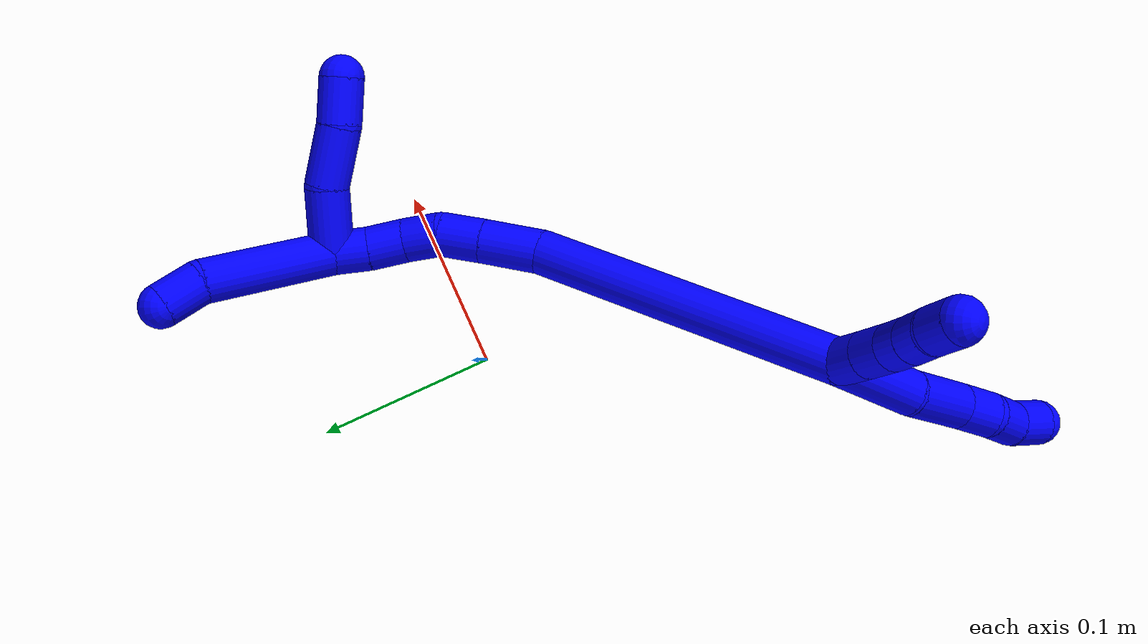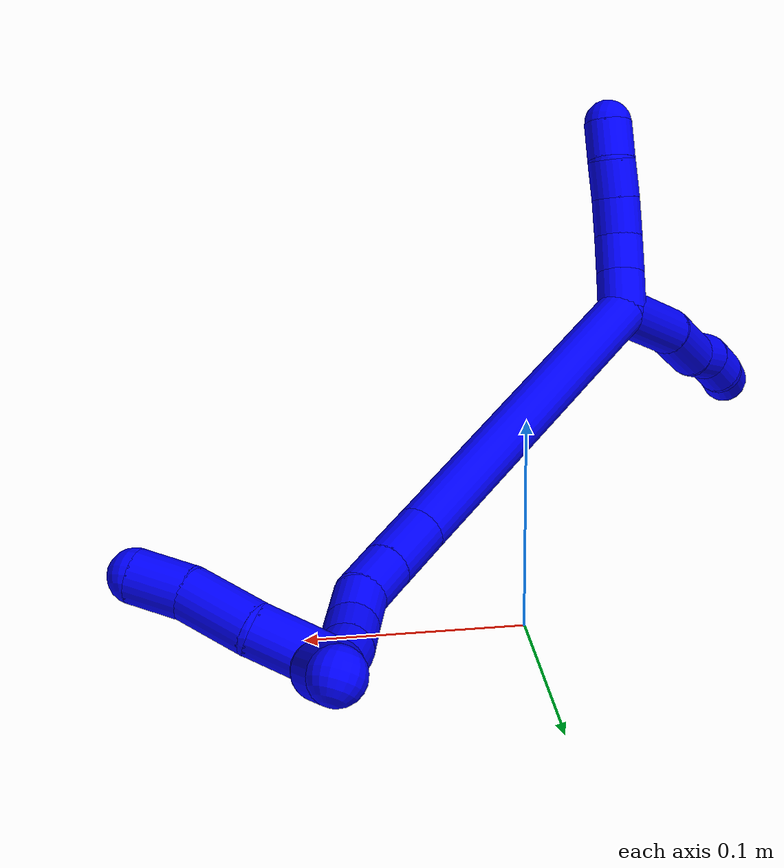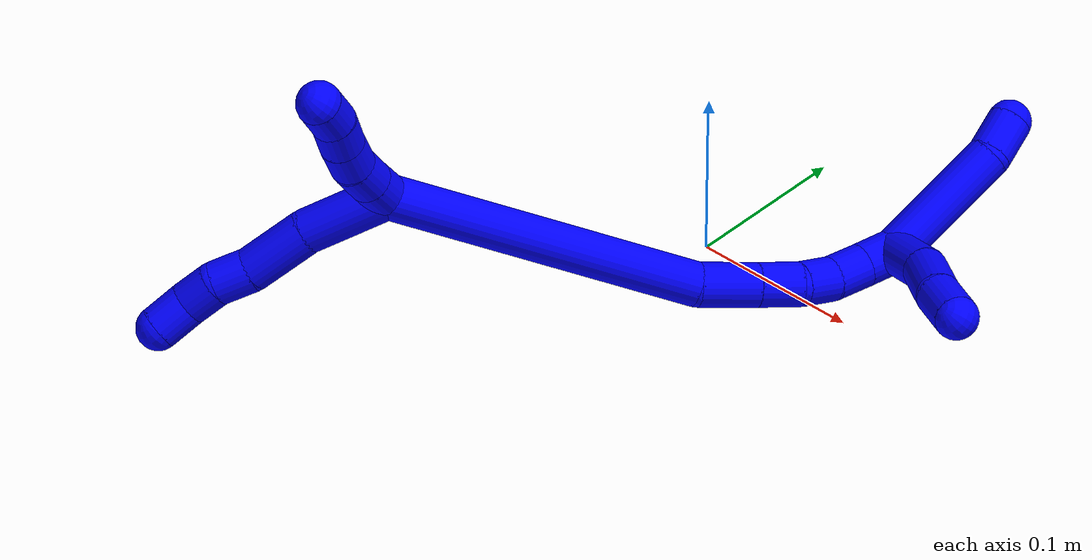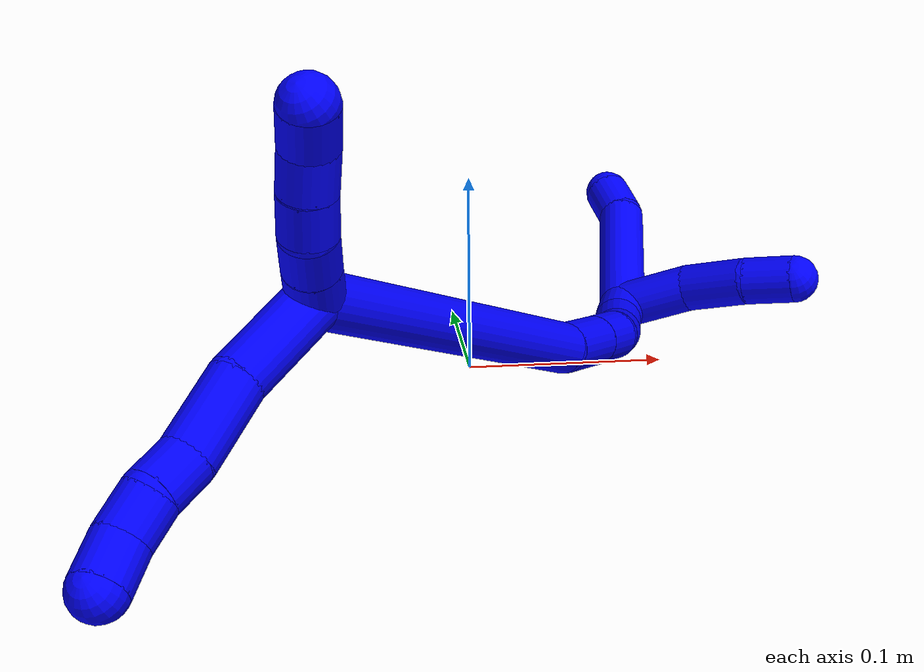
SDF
<sdf version="1.7">
 <world name="default">
  <model name="1">
   <static>0</static>
   <link name="1">
    <collision name="collision-cylinder-e_1_2_8">
     <pose>-0.020816 -0.01195 0.006282 1.08681 -0.995417 -0.634262</pose>
     <geometry><cylinder><radius>0.0125</radius><length>0.049622</length></cylinder></geometry>
     <surface>
      <friction><ode><mu>1.16</mu><mu2>1.16</mu2><slip1>0</slip1><slip2>0</slip2></ode></friction>
      <contact><ode><kp>1e+06</kp><kd>1</kd><max_vel>0</max_vel><min_depth>0.001</min_depth></ode></contact>
     </surface>
    </collision>
    <visual name="visual-cylinder-e_1_2_8">
     <pose>-0.020816 -0.01195 0.006282 1.08681 -0.995417 -0.634262</pose>
     <geometry><cylinder><radius>0.0125</radius><length>0.049622</length></cylinder></geometry>
     <material><ambient>0 0 1 1</ambient></material>
    </visual>
    <collision name="collision-cylinder-e_2_8_9">
     <pose>-0.056564 -0.03551 0.014994 1.36452 -0.899516 -0.747517</pose>
     <geometry><cylinder><radius>0.0125</radius><length>0.038139</length></cylinder></geometry>
     <surface>
      <friction><ode><mu>1.16</mu><mu2>1.16</mu2><slip1>0</slip1><slip2>0</slip2></ode></friction>
      <contact><ode><kp>1e+06</kp><kd>1</kd><max_vel>0</max_vel><min_depth>0.001</min_depth></ode></contact>
     </surface>
    </collision>
    <visual name="visual-cylinder-e_2_8_9">
     <pose>-0.056564 -0.03551 0.014994 1.36452 -0.899516 -0.747517</pose>
     <geometry><cylinder><radius>0.0125</radius><length>0.038139</length></cylinder></geometry>
     <material><ambient>0 0 1 1</ambient></material>
    </visual>
    <collision name="collision-cylinder-e_3_9_10">
     <pose>-0.079555 -0.052562 0.021198 0.964293 -0.882879 -0.484872</pose>
     <geometry><cylinder><radius>0.0125</radius><length>0.020864</length></cylinder></geometry>
     <surface>
      <friction><ode><mu>1.16</mu><mu2>1.16</mu2><slip1>0</slip1><slip2>0</slip2></ode></friction>
      <contact><ode><kp>1e+06</kp><kd>1</kd><max_vel>0</max_vel><min_depth>0.001</min_depth></ode></contact>
     </surface>
    </collision>
    <visual name="visual-cylinder-e_3_9_10">
     <pose>-0.079555 -0.052562 0.021198 0.964293 -0.882879 -0.484872</pose>
     <geometry><cylinder><radius>0.0125</radius><length>0.020864</length></cylinder></geometry>
     <material><ambient>0 0 1 1</ambient></material>
    </visual>
    <collision name="collision-cylinder-e_4_10_11">
     <pose>-0.095908 -0.063667 0.025447 1.48746 -0.970087 -0.902912</pose>
     <geometry><cylinder><radius>0.0125</radius><length>0.020106</length></cylinder></geometry>
     <surface>
      <friction><ode><mu>1.16</mu><mu2>1.16</mu2><slip1>0</slip1><slip2>0</slip2></ode></friction>
      <contact><ode><kp>1e+06</kp><kd>1</kd><max_vel>0</max_vel><min_depth>0.001</min_depth></ode></contact>
     </surface>
    </collision>
    <visual name="visual-cylinder-e_4_10_11">
     <pose>-0.095908 -0.063667 0.025447 1.48746 -0.970087 -0.902912</pose>
     <geometry><cylinder><radius>0.0125</radius><length>0.020106</length></cylinder></geometry>
     <material><ambient>0 0 1 1</ambient></material>
    </visual>
    <collision name="collision-cylinder-e_5_11_6">
     <pose>-0.110945 -0.077295 0.027959 1.32022 -0.686901 -0.541593</pose>
     <geometry><cylinder><radius>0.0125</radius><length>0.021269</length></cylinder></geometry>
     <surface>
      <friction><ode><mu>1.16</mu><mu2>1.16</mu2><slip1>0</slip1><slip2>0</slip2></ode></friction>
      <contact><ode><kp>1e+06</kp><kd>1</kd><max_vel>0</max_vel><min_depth>0.001</min_depth></ode></contact>
     </surface>
    </collision>
    <visual name="visual-cylinder-e_5_11_6">
     <pose>-0.110945 -0.077295 0.027959 1.32022 -0.686901 -0.541593</pose>
     <geometry><cylinder><radius>0.0125</radius><length>0.021269</length></cylinder></geometry>
     <material><ambient>0 0 1 1</ambient></material>
    </visual>
    <collision name="collision-cylinder-e_1_2_12">
     <pose>0.002844 -0.000401 0.009579 0.041793 0.288351 0.006068</pose>
     <geometry><cylinder><radius>0.0125</radius><length>0.02</length></cylinder></geometry>
     <surface>
      <friction><ode><mu>1.16</mu><mu2>1.16</mu2><slip1>0</slip1><slip2>0</slip2></ode></friction>
      <contact><ode><kp>1e+06</kp><kd>1</kd><max_vel>0</max_vel><min_depth>0.001</min_depth></ode></contact>
     </surface>
    </collision>
    <visual name="visual-cylinder-e_1_2_12">
     <pose>0.002844 -0.000401 0.009579 0.041793 0.288351 0.006068</pose>
     <geometry><cylinder><radius>0.0125</radius><length>0.02</length></cylinder></geometry>
     <material><ambient>0 0 1 1</ambient></material>
    </visual>
    <collision name="collision-cylinder-e_2_12_13">
     <pose>0.008778 -0.00099 0.028666 0.019894 0.31421 0.003152</pose>
     <geometry><cylinder><radius>0.0125</radius><length>0.02</length></cylinder></geometry>
     <surface>
      <friction><ode><mu>1.16</mu><mu2>1.16</mu2><slip1>0</slip1><slip2>0</slip2></ode></friction>
      <contact><ode><kp>1e+06</kp><kd>1</kd><max_vel>0</max_vel><min_depth>0.001</min_depth></ode></contact>
     </surface>
    </collision>
    <visual name="visual-cylinder-e_2_12_13">
     <pose>0.008778 -0.00099 0.028666 0.019894 0.31421 0.003152</pose>
     <geometry><cylinder><radius>0.0125</radius><length>0.02</length></cylinder></geometry>
     <material><ambient>0 0 1 1</ambient></material>
    </visual>
    <collision name="collision-cylinder-e_3_13_14">
     <pose>0.016094 0.000337 0.04711 -0.168144 0.436279 -0.037356</pose>
     <geometry><cylinder><radius>0.0125</radius><length>0.02</length></cylinder></geometry>
     <surface>
      <friction><ode><mu>1.16</mu><mu2>1.16</mu2><slip1>0</slip1><slip2>0</slip2></ode></friction>
      <contact><ode><kp>1e+06</kp><kd>1</kd><max_vel>0</max_vel><min_depth>0.001</min_depth></ode></contact>
     </surface>
    </collision>
    <visual name="visual-cylinder-e_3_13_14">
     <pose>0.016094 0.000337 0.04711 -0.168144 0.436279 -0.037356</pose>
     <geometry><cylinder><radius>0.0125</radius><length>0.02</length></cylinder></geometry>
     <material><ambient>0 0 1 1</ambient></material>
    </visual>
    <collision name="collision-cylinder-e_4_14_15">
     <pose>0.025091 0.003599 0.064659 -0.199843 0.49736 -0.050906</pose>
     <geometry><cylinder><radius>0.0125</radius><length>0.02</length></cylinder></geometry>
     <surface>
      <friction><ode><mu>1.16</mu><mu2>1.16</mu2><slip1>0</slip1><slip2>0</slip2></ode></friction>
      <contact><ode><kp>1e+06</kp><kd>1</kd><max_vel>0</max_vel><min_depth>0.001</min_depth></ode></contact>
     </surface>
    </collision>
    <visual name="visual-cylinder-e_4_14_15">
     <pose>0.025091 0.003599 0.064659 -0.199843 0.49736 -0.050906</pose>
     <geometry><cylinder><radius>0.0125</radius><length>0.02</length></cylinder></geometry>
     <material><ambient>0 0 1 1</ambient></material>
    </visual>
    <collision name="collision-cylinder-e_5_15_5">
     <pose>0.033633 0.005556 0.082532 -0.023007 0.386652 -0.004504</pose>
     <geometry><cylinder><radius>0.0125</radius><length>0.02</length></cylinder></geometry>
     <surface>
      <friction><ode><mu>1.16</mu><mu2>1.16</mu2><slip1>0</slip1><slip2>0</slip2></ode></friction>
      <contact><ode><kp>1e+06</kp><kd>1</kd><max_vel>0</max_vel><min_depth>0.001</min_depth></ode></contact>
     </surface>
    </collision>
    <visual name="visual-cylinder-e_5_15_5">
     <pose>0.033633 0.005556 0.082532 -0.023007 0.386652 -0.004504</pose>
     <geometry><cylinder><radius>0.0125</radius><length>0.02</length></cylinder></geometry>
     <material><ambient>0 0 1 1</ambient></material>
    </visual>
    <collision name="collision-cylinder-e_1_2_16">
     <pose>0.042117 0.008408 -0.078242 -3.03454 0.491415 -2.72064</pose>
     <geometry><cylinder><radius>0.0125</radius><length>0.178508</length></cylinder></geometry>
     <surface>
      <friction><ode><mu>1.16</mu><mu2>1.16</mu2><slip1>0</slip1><slip2>0</slip2></ode></friction>
      <contact><ode><kp>1e+06</kp><kd>1</kd><max_vel>0</max_vel><min_depth>0.001</min_depth></ode></contact>
     </surface>
    </collision>
    <visual name="visual-cylinder-e_1_2_16">
     <pose>0.042117 0.008408 -0.078242 -3.03454 0.491415 -2.72064</pose>
     <geometry><cylinder><radius>0.0125</radius><length>0.178508</length></cylinder></geometry>
     <material><ambient>0 0 1 1</ambient></material>
    </visual>
    <collision name="collision-cylinder-e_2_16_17">
     <pose>0.092633 0.022643 -0.169967 -2.73364 0.51943 -1.81864</pose>
     <geometry><cylinder><radius>0.0125</radius><length>0.033842</length></cylinder></geometry>
     <surface>
      <friction><ode><mu>1.16</mu><mu2>1.16</mu2><slip1>0</slip1><slip2>0</slip2></ode></friction>
      <contact><ode><kp>1e+06</kp><kd>1</kd><max_vel>0</max_vel><min_depth>0.001</min_depth></ode></contact>
     </surface>
    </collision>
    <visual name="visual-cylinder-e_2_16_17">
     <pose>0.092633 0.022643 -0.169967 -2.73364 0.51943 -1.81864</pose>
     <geometry><cylinder><radius>0.0125</radius><length>0.033842</length></cylinder></geometry>
     <material><ambient>0 0 1 1</ambient></material>
    </visual>
    <collision name="collision-cylinder-e_3_17_18">
     <pose>0.106975 0.032875 -0.193073 -2.71232 0.511703 -1.7521</pose>
     <geometry><cylinder><radius>0.0125</radius><length>0.024274</length></cylinder></geometry>
     <surface>
      <friction><ode><mu>1.16</mu><mu2>1.16</mu2><slip1>0</slip1><slip2>0</slip2></ode></friction>
      <contact><ode><kp>1e+06</kp><kd>1</kd><max_vel>0</max_vel><min_depth>0.001</min_depth></ode></contact>
     </surface>
    </collision>
    <visual name="visual-cylinder-e_3_17_18">
     <pose>0.106975 0.032875 -0.193073 -2.71232 0.511703 -1.7521</pose>
     <geometry><cylinder><radius>0.0125</radius><length>0.024274</length></cylinder></geometry>
     <material><ambient>0 0 1 1</ambient></material>
    </visual>
    <collision name="collision-cylinder-e_4_18_19">
     <pose>0.11516 0.042855 -0.211262 -2.56463 0.215937 -0.700378</pose>
     <geometry><cylinder><radius>0.0125</radius><length>0.020929</length></cylinder></geometry>
     <surface>
      <friction><ode><mu>1.16</mu><mu2>1.16</mu2><slip1>0</slip1><slip2>0</slip2></ode></friction>
      <contact><ode><kp>1e+06</kp><kd>1</kd><max_vel>0</max_vel><min_depth>0.001</min_depth></ode></contact>
     </surface>
    </collision>
    <visual name="visual-cylinder-e_4_18_19">
     <pose>0.11516 0.042855 -0.211262 -2.56463 0.215937 -0.700378</pose>
     <geometry><cylinder><radius>0.0125</radius><length>0.020929</length></cylinder></geometry>
     <material><ambient>0 0 1 1</ambient></material>
    </visual>
    <collision name="collision-cylinder-e_5_19_20">
     <pose>0.120221 0.055871 -0.22712 -2.34608 0.264283 -0.612783</pose>
     <geometry><cylinder><radius>0.0125</radius><length>0.021584</length></cylinder></geometry>
     <surface>
      <friction><ode><mu>1.16</mu><mu2>1.16</mu2><slip1>0</slip1><slip2>0</slip2></ode></friction>
      <contact><ode><kp>1e+06</kp><kd>1</kd><max_vel>0</max_vel><min_depth>0.001</min_depth></ode></contact>
     </surface>
    </collision>
    <visual name="visual-cylinder-e_5_19_20">
     <pose>0.120221 0.055871 -0.22712 -2.34608 0.264283 -0.612783</pose>
     <geometry><cylinder><radius>0.0125</radius><length>0.021584</length></cylinder></geometry>
     <material><ambient>0 0 1 1</ambient></material>
    </visual>
    <collision name="collision-cylinder-e_6_20_1">
     <pose>0.127133 0.070546 -0.240715 -2.28753 0.403139 -0.844168</pose>
     <geometry><cylinder><radius>0.0125</radius><length>0.020864</length></cylinder></geometry>
     <surface>
      <friction><ode><mu>1.16</mu><mu2>1.16</mu2><slip1>0</slip1><slip2>0</slip2></ode></friction>
      <contact><ode><kp>1e+06</kp><kd>1</kd><max_vel>0</max_vel><min_depth>0.001</min_depth></ode></contact>
     </surface>
    </collision>
    <visual name="visual-cylinder-e_6_20_1">
     <pose>0.127133 0.070546 -0.240715 -2.28753 0.403139 -0.844168</pose>
     <geometry><cylinder><radius>0.0125</radius><length>0.020864</length></cylinder></geometry>
     <material><ambient>0 0 1 1</ambient></material>
    </visual>
    <collision name="collision-cylinder-e_1_1_21">
     <pose>0.148344 0.069333 -0.243572 1.18349 1.08112 0.766838</pose>
     <geometry><cylinder><radius>0.0125</radius><length>0.038797</length></cylinder></geometry>
     <surface>
      <friction><ode><mu>1.16</mu><mu2>1.16</mu2><slip1>0</slip1><slip2>0</slip2></ode></friction>
      <contact><ode><kp>1e+06</kp><kd>1</kd><max_vel>0</max_vel><min_depth>0.001</min_depth></ode></contact>
     </surface>
    </collision>
    <visual name="visual-cylinder-e_1_1_21">
     <pose>0.148344 0.069333 -0.243572 1.18349 1.08112 0.766838</pose>
     <geometry><cylinder><radius>0.0125</radius><length>0.038797</length></cylinder></geometry>
     <material><ambient>0 0 1 1</ambient></material>
    </visual>
    <collision name="collision-cylinder-e_2_21_22">
     <pose>0.178145 0.049996 -0.235043 1.13406 0.812347 0.534641</pose>
     <geometry><cylinder><radius>0.0125</radius><length>0.034941</length></cylinder></geometry>
     <surface>
      <friction><ode><mu>1.16</mu><mu2>1.16</mu2><slip1>0</slip1><slip2>0</slip2></ode></friction>
      <contact><ode><kp>1e+06</kp><kd>1</kd><max_vel>0</max_vel><min_depth>0.001</min_depth></ode></contact>
     </surface>
    </collision>
    <visual name="visual-cylinder-e_2_21_22">
     <pose>0.178145 0.049996 -0.235043 1.13406 0.812347 0.534641</pose>
     <geometry><cylinder><radius>0.0125</radius><length>0.034941</length></cylinder></geometry>
     <material><ambient>0 0 1 1</ambient></material>
    </visual>
    <collision name="collision-cylinder-e_3_22_4">
     <pose>0.201114 0.031056 -0.228628 1.4068 0.900116 0.777765</pose>
     <geometry><cylinder><radius>0.0125</radius><length>0.026262</length></cylinder></geometry>
     <surface>
      <friction><ode><mu>1.16</mu><mu2>1.16</mu2><slip1>0</slip1><slip2>0</slip2></ode></friction>
      <contact><ode><kp>1e+06</kp><kd>1</kd><max_vel>0</max_vel><min_depth>0.001</min_depth></ode></contact>
     </surface>
    </collision>
    <visual name="visual-cylinder-e_3_22_4">
     <pose>0.201114 0.031056 -0.228628 1.4068 0.900116 0.777765</pose>
     <geometry><cylinder><radius>0.0125</radius><length>0.026262</length></cylinder></geometry>
     <material><ambient>0 0 1 1</ambient></material>
    </visual>
    <collision name="collision-cylinder-e_1_1_23">
     <pose>0.147457 0.110552 -0.256669 -1.8572 0.443542 -0.585587</pose>
     <geometry><cylinder><radius>0.0125</radius><length>0.075646</length></cylinder></geometry>
     <surface>
      <friction><ode><mu>1.16</mu><mu2>1.16</mu2><slip1>0</slip1><slip2>0</slip2></ode></friction>
      <contact><ode><kp>1e+06</kp><kd>1</kd><max_vel>0</max_vel><min_depth>0.001</min_depth></ode></contact>
     </surface>
    </collision>
    <visual name="visual-cylinder-e_1_1_23">
     <pose>0.147457 0.110552 -0.256669 -1.8572 0.443542 -0.585587</pose>
     <geometry><cylinder><radius>0.0125</radius><length>0.075646</length></cylinder></geometry>
     <material><ambient>0 0 1 1</ambient></material>
    </visual>
    <collision name="collision-cylinder-e_2_23_3">
     <pose>0.165041 0.155101 -0.269105 -1.80296 0.111346 -0.140654</pose>
     <geometry><cylinder><radius>0.0125</radius><length>0.024354</length></cylinder></geometry>
     <surface>
      <friction><ode><mu>1.16</mu><mu2>1.16</mu2><slip1>0</slip1><slip2>0</slip2></ode></friction>
      <contact><ode><kp>1e+06</kp><kd>1</kd><max_vel>0</max_vel><min_depth>0.001</min_depth></ode></contact>
     </surface>
    </collision>
    <visual name="visual-cylinder-e_2_23_3">
     <pose>0.165041 0.155101 -0.269105 -1.80296 0.111346 -0.140654</pose>
     <geometry><cylinder><radius>0.0125</radius><length>0.024354</length></cylinder></geometry>
     <material><ambient>0 0 1 1</ambient></material>
    </visual>
    <collision name="collision-sphere-3">
     <pose>0.166394 0.166878 -0.271889 0 -0 0</pose>
     <geometry><sphere><radius>0.0125</radius></sphere></geometry>
     <surface>
      <friction><ode><mu>1.16</mu><mu2>1.16</mu2><slip1>0</slip1><slip2>0</slip2></ode></friction>
      <contact><ode><kp>1e+06</kp><kd>1</kd><max_vel>0</max_vel><min_depth>0.001</min_depth></ode></contact>
     </surface>
    </collision>
    <visual name="visual-sphere-3">
     <pose>0.166394 0.166878 -0.271889 0 -0 0</pose>
     <geometry><sphere><radius>0.0125</radius></sphere></geometry>
     <material><ambient>0 0 1 1</ambient></material>
    </visual>
    <collision name="collision-sphere-23">
     <pose>0.163688 0.143324 -0.26632 0 -0 0</pose>
     <geometry><sphere><radius>0.0125</radius></sphere></geometry>
     <surface>
      <friction><ode><mu>1.16</mu><mu2>1.16</mu2><slip1>0</slip1><slip2>0</slip2></ode></friction>
      <contact><ode><kp>1e+06</kp><kd>1</kd><max_vel>0</max_vel><min_depth>0.001</min_depth></ode></contact>
     </surface>
    </collision>
    <visual name="visual-sphere-23">
     <pose>0.163688 0.143324 -0.26632 0 -0 0</pose>
     <geometry><sphere><radius>0.0125</radius></sphere></geometry>
     <material><ambient>0 0 1 1</ambient></material>
    </visual>
    <collision name="collision-sphere-4">
     <pose>0.211401 0.023005 -0.227296 0 -0 0</pose>
     <geometry><sphere><radius>0.0125</radius></sphere></geometry>
     <surface>
      <friction><ode><mu>1.16</mu><mu2>1.16</mu2><slip1>0</slip1><slip2>0</slip2></ode></friction>
      <contact><ode><kp>1e+06</kp><kd>1</kd><max_vel>0</max_vel><min_depth>0.001</min_depth></ode></contact>
     </surface>
    </collision>
    <visual name="visual-sphere-4">
     <pose>0.211401 0.023005 -0.227296 0 -0 0</pose>
     <geometry><sphere><radius>0.0125</radius></sphere></geometry>
     <material><ambient>0 0 1 1</ambient></material>
    </visual>
    <collision name="collision-sphere-22">
     <pose>0.190827 0.039108 -0.229961 0 -0 0</pose>
     <geometry><sphere><radius>0.0125</radius></sphere></geometry>
     <surface>
      <friction><ode><mu>1.16</mu><mu2>1.16</mu2><slip1>0</slip1><slip2>0</slip2></ode></friction>
      <contact><ode><kp>1e+06</kp><kd>1</kd><max_vel>0</max_vel><min_depth>0.001</min_depth></ode></contact>
     </surface>
    </collision>
    <visual name="visual-sphere-22">
     <pose>0.190827 0.039108 -0.229961 0 -0 0</pose>
     <geometry><sphere><radius>0.0125</radius></sphere></geometry>
     <material><ambient>0 0 1 1</ambient></material>
    </visual>
    <collision name="collision-sphere-21">
     <pose>0.165463 0.060885 -0.240126 0 -0 0</pose>
     <geometry><sphere><radius>0.0125</radius></sphere></geometry>
     <surface>
      <friction><ode><mu>1.16</mu><mu2>1.16</mu2><slip1>0</slip1><slip2>0</slip2></ode></friction>
      <contact><ode><kp>1e+06</kp><kd>1</kd><max_vel>0</max_vel><min_depth>0.001</min_depth></ode></contact>
     </surface>
    </collision>
    <visual name="visual-sphere-21">
     <pose>0.165463 0.060885 -0.240126 0 -0 0</pose>
     <geometry><sphere><radius>0.0125</radius></sphere></geometry>
     <material><ambient>0 0 1 1</ambient></material>
    </visual>
    <collision name="collision-sphere-1">
     <pose>0.131225 0.077781 -0.247018 0 -0 0</pose>
     <geometry><sphere><radius>0.0125</radius></sphere></geometry>
     <surface>
      <friction><ode><mu>1.16</mu><mu2>1.16</mu2><slip1>0</slip1><slip2>0</slip2></ode></friction>
      <contact><ode><kp>1e+06</kp><kd>1</kd><max_vel>0</max_vel><min_depth>0.001</min_depth></ode></contact>
     </surface>
    </collision>
    <visual name="visual-sphere-1">
     <pose>0.131225 0.077781 -0.247018 0 -0 0</pose>
     <geometry><sphere><radius>0.0125</radius></sphere></geometry>
     <material><ambient>0 0 1 1</ambient></material>
    </visual>
    <collision name="collision-sphere-6">
     <pose>-0.117689 -0.085261 0.029998 0 -0 0</pose>
     <geometry><sphere><radius>0.0125</radius></sphere></geometry>
     <surface>
      <friction><ode><mu>1.16</mu><mu2>1.16</mu2><slip1>0</slip1><slip2>0</slip2></ode></friction>
      <contact><ode><kp>1e+06</kp><kd>1</kd><max_vel>0</max_vel><min_depth>0.001</min_depth></ode></contact>
     </surface>
    </collision>
    <visual name="visual-sphere-6">
     <pose>-0.117689 -0.085261 0.029998 0 -0 0</pose>
     <geometry><sphere><radius>0.0125</radius></sphere></geometry>
     <material><ambient>0 0 1 1</ambient></material>
    </visual>
    <collision name="collision-sphere-11">
     <pose>-0.104201 -0.069329 0.02592 0 -0 0</pose>
     <geometry><sphere><radius>0.0125</radius></sphere></geometry>
     <surface>
      <friction><ode><mu>1.16</mu><mu2>1.16</mu2><slip1>0</slip1><slip2>0</slip2></ode></friction>
      <contact><ode><kp>1e+06</kp><kd>1</kd><max_vel>0</max_vel><min_depth>0.001</min_depth></ode></contact>
     </surface>
    </collision>
    <visual name="visual-sphere-11">
     <pose>-0.104201 -0.069329 0.02592 0 -0 0</pose>
     <geometry><sphere><radius>0.0125</radius></sphere></geometry>
     <material><ambient>0 0 1 1</ambient></material>
    </visual>
    <collision name="collision-sphere-10">
     <pose>-0.087615 -0.058004 0.024974 0 -0 0</pose>
     <geometry><sphere><radius>0.0125</radius></sphere></geometry>
     <surface>
      <friction><ode><mu>1.16</mu><mu2>1.16</mu2><slip1>0</slip1><slip2>0</slip2></ode></friction>
      <contact><ode><kp>1e+06</kp><kd>1</kd><max_vel>0</max_vel><min_depth>0.001</min_depth></ode></contact>
     </surface>
    </collision>
    <visual name="visual-sphere-10">
     <pose>-0.087615 -0.058004 0.024974 0 -0 0</pose>
     <geometry><sphere><radius>0.0125</radius></sphere></geometry>
     <material><ambient>0 0 1 1</ambient></material>
    </visual>
    <collision name="collision-sphere-9">
     <pose>-0.071495 -0.04712 0.017423 0 -0 0</pose>
     <geometry><sphere><radius>0.0125</radius></sphere></geometry>
     <surface>
      <friction><ode><mu>1.16</mu><mu2>1.16</mu2><slip1>0</slip1><slip2>0</slip2></ode></friction>
      <contact><ode><kp>1e+06</kp><kd>1</kd><max_vel>0</max_vel><min_depth>0.001</min_depth></ode></contact>
     </surface>
    </collision>
    <visual name="visual-sphere-9">
     <pose>-0.071495 -0.04712 0.017423 0 -0 0</pose>
     <geometry><sphere><radius>0.0125</radius></sphere></geometry>
     <material><ambient>0 0 1 1</ambient></material>
    </visual>
    <collision name="collision-sphere-2">
     <geometry><sphere><radius>0.0125</radius></sphere></geometry>
     <surface>
      <friction><ode><mu>1.16</mu><mu2>1.16</mu2><slip1>0</slip1><slip2>0</slip2></ode></friction>
      <contact><ode><kp>1e+06</kp><kd>1</kd><max_vel>0</max_vel><min_depth>0.001</min_depth></ode></contact>
     </surface>
    </collision>
    <visual name="visual-sphere-2">
     <geometry><sphere><radius>0.0125</radius></sphere></geometry>
     <material><ambient>0 0 1 1</ambient></material>
    </visual>
    <collision name="collision-sphere-19">
     <pose>0.117402 0.048431 -0.219828 0 -0 0</pose>
     <geometry><sphere><radius>0.0125</radius></sphere></geometry>
     <surface>
      <friction><ode><mu>1.16</mu><mu2>1.16</mu2><slip1>0</slip1><slip2>0</slip2></ode></friction>
      <contact><ode><kp>1e+06</kp><kd>1</kd><max_vel>0</max_vel><min_depth>0.001</min_depth></ode></contact>
     </surface>
    </collision>
    <visual name="visual-sphere-19">
     <pose>0.117402 0.048431 -0.219828 0 -0 0</pose>
     <geometry><sphere><radius>0.0125</radius></sphere></geometry>
     <material><ambient>0 0 1 1</ambient></material>
    </visual>
    <collision name="collision-sphere-8">
     <pose>-0.041632 -0.023901 0.012564 0 -0 0</pose>
     <geometry><sphere><radius>0.0125</radius></sphere></geometry>
     <surface>
      <friction><ode><mu>1.16</mu><mu2>1.16</mu2><slip1>0</slip1><slip2>0</slip2></ode></friction>
      <contact><ode><kp>1e+06</kp><kd>1</kd><max_vel>0</max_vel><min_depth>0.001</min_depth></ode></contact>
     </surface>
    </collision>
    <visual name="visual-sphere-8">
     <pose>-0.041632 -0.023901 0.012564 0 -0 0</pose>
     <geometry><sphere><radius>0.0125</radius></sphere></geometry>
     <material><ambient>0 0 1 1</ambient></material>
    </visual>
    <collision name="collision-sphere-12">
     <pose>0.005687 -0.000801 0.019158 0 -0 0</pose>
     <geometry><sphere><radius>0.0125</radius></sphere></geometry>
     <surface>
      <friction><ode><mu>1.16</mu><mu2>1.16</mu2><slip1>0</slip1><slip2>0</slip2></ode></friction>
      <contact><ode><kp>1e+06</kp><kd>1</kd><max_vel>0</max_vel><min_depth>0.001</min_depth></ode></contact>
     </surface>
    </collision>
    <visual name="visual-sphere-12">
     <pose>0.005687 -0.000801 0.019158 0 -0 0</pose>
     <geometry><sphere><radius>0.0125</radius></sphere></geometry>
     <material><ambient>0 0 1 1</ambient></material>
    </visual>
    <collision name="collision-sphere-13">
     <pose>0.011869 -0.001179 0.038175 0 -0 0</pose>
     <geometry><sphere><radius>0.0125</radius></sphere></geometry>
     <surface>
      <friction><ode><mu>1.16</mu><mu2>1.16</mu2><slip1>0</slip1><slip2>0</slip2></ode></friction>
      <contact><ode><kp>1e+06</kp><kd>1</kd><max_vel>0</max_vel><min_depth>0.001</min_depth></ode></contact>
     </surface>
    </collision>
    <visual name="visual-sphere-13">
     <pose>0.011869 -0.001179 0.038175 0 -0 0</pose>
     <geometry><sphere><radius>0.0125</radius></sphere></geometry>
     <material><ambient>0 0 1 1</ambient></material>
    </visual>
    <collision name="collision-sphere-14">
     <pose>0.02032 0.001854 0.056046 0 -0 0</pose>
     <geometry><sphere><radius>0.0125</radius></sphere></geometry>
     <surface>
      <friction><ode><mu>1.16</mu><mu2>1.16</mu2><slip1>0</slip1><slip2>0</slip2></ode></friction>
      <contact><ode><kp>1e+06</kp><kd>1</kd><max_vel>0</max_vel><min_depth>0.001</min_depth></ode></contact>
     </surface>
    </collision>
    <visual name="visual-sphere-14">
     <pose>0.02032 0.001854 0.056046 0 -0 0</pose>
     <geometry><sphere><radius>0.0125</radius></sphere></geometry>
     <material><ambient>0 0 1 1</ambient></material>
    </visual>
    <collision name="collision-sphere-15">
     <pose>0.029862 0.005343 0.073273 0 -0 0</pose>
     <geometry><sphere><radius>0.0125</radius></sphere></geometry>
     <surface>
      <friction><ode><mu>1.16</mu><mu2>1.16</mu2><slip1>0</slip1><slip2>0</slip2></ode></friction>
      <contact><ode><kp>1e+06</kp><kd>1</kd><max_vel>0</max_vel><min_depth>0.001</min_depth></ode></contact>
     </surface>
    </collision>
    <visual name="visual-sphere-15">
     <pose>0.029862 0.005343 0.073273 0 -0 0</pose>
     <geometry><sphere><radius>0.0125</radius></sphere></geometry>
     <material><ambient>0 0 1 1</ambient></material>
    </visual>
    <collision name="collision-sphere-5">
     <pose>0.037404 0.005769 0.091791 0 -0 0</pose>
     <geometry><sphere><radius>0.0125</radius></sphere></geometry>
     <surface>
      <friction><ode><mu>1.16</mu><mu2>1.16</mu2><slip1>0</slip1><slip2>0</slip2></ode></friction>
      <contact><ode><kp>1e+06</kp><kd>1</kd><max_vel>0</max_vel><min_depth>0.001</min_depth></ode></contact>
     </surface>
    </collision>
    <visual name="visual-sphere-5">
     <pose>0.037404 0.005769 0.091791 0 -0 0</pose>
     <geometry><sphere><radius>0.0125</radius></sphere></geometry>
     <material><ambient>0 0 1 1</ambient></material>
    </visual>
    <collision name="collision-sphere-16">
     <pose>0.084233 0.016816 -0.156483 0 -0 0</pose>
     <geometry><sphere><radius>0.0125</radius></sphere></geometry>
     <surface>
      <friction><ode><mu>1.16</mu><mu2>1.16</mu2><slip1>0</slip1><slip2>0</slip2></ode></friction>
      <contact><ode><kp>1e+06</kp><kd>1</kd><max_vel>0</max_vel><min_depth>0.001</min_depth></ode></contact>
     </surface>
    </collision>
    <visual name="visual-sphere-16">
     <pose>0.084233 0.016816 -0.156483 0 -0 0</pose>
     <geometry><sphere><radius>0.0125</radius></sphere></geometry>
     <material><ambient>0 0 1 1</ambient></material>
    </visual>
    <collision name="collision-sphere-17">
     <pose>0.101032 0.028471 -0.183451 0 -0 0</pose>
     <geometry><sphere><radius>0.0125</radius></sphere></geometry>
     <surface>
      <friction><ode><mu>1.16</mu><mu2>1.16</mu2><slip1>0</slip1><slip2>0</slip2></ode></friction>
      <contact><ode><kp>1e+06</kp><kd>1</kd><max_vel>0</max_vel><min_depth>0.001</min_depth></ode></contact>
     </surface>
    </collision>
    <visual name="visual-sphere-17">
     <pose>0.101032 0.028471 -0.183451 0 -0 0</pose>
     <geometry><sphere><radius>0.0125</radius></sphere></geometry>
     <material><ambient>0 0 1 1</ambient></material>
    </visual>
    <collision name="collision-sphere-18">
     <pose>0.112918 0.03728 -0.202695 0 -0 0</pose>
     <geometry><sphere><radius>0.0125</radius></sphere></geometry>
     <surface>
      <friction><ode><mu>1.16</mu><mu2>1.16</mu2><slip1>0</slip1><slip2>0</slip2></ode></friction>
      <contact><ode><kp>1e+06</kp><kd>1</kd><max_vel>0</max_vel><min_depth>0.001</min_depth></ode></contact>
     </surface>
    </collision>
    <visual name="visual-sphere-18">
     <pose>0.112918 0.03728 -0.202695 0 -0 0</pose>
     <geometry><sphere><radius>0.0125</radius></sphere></geometry>
     <material><ambient>0 0 1 1</ambient></material>
    </visual>
    <collision name="collision-sphere-20">
     <pose>0.12304 0.063311 -0.234411 0 -0 0</pose>
     <geometry><sphere><radius>0.0125</radius></sphere></geometry>
     <surface>
      <friction><ode><mu>1.16</mu><mu2>1.16</mu2><slip1>0</slip1><slip2>0</slip2></ode></friction>
      <contact><ode><kp>1e+06</kp><kd>1</kd><max_vel>0</max_vel><min_depth>0.001</min_depth></ode></contact>
     </surface>
    </collision>
    <visual name="visual-sphere-20">
     <pose>0.12304 0.063311 -0.234411 0 -0 0</pose>
     <geometry><sphere><radius>0.0125</radius></sphere></geometry>
     <material><ambient>0 0 1 1</ambient></material>
    </visual>
    <inertial>
     <pose>0.061244 0.024302 -0.108406 0 -0 0</pose>
     <mass>0.75</mass>
     <inertia>
      <ixx>-0.000522</ixx>
      <ixy>0</ixy>
      <ixz>0</ixz>
      <iyy>0.000278</iyy>
      <iyz>0</iyz>
      <izz>-0.000322</izz>
     </inertia>
    </inertial>
   </link>
   <pose>-0.079075 -0.16986 0.089624 0.604775 -0.505751 0.10527</pose>
  </model>
 </world>
</sdf>
